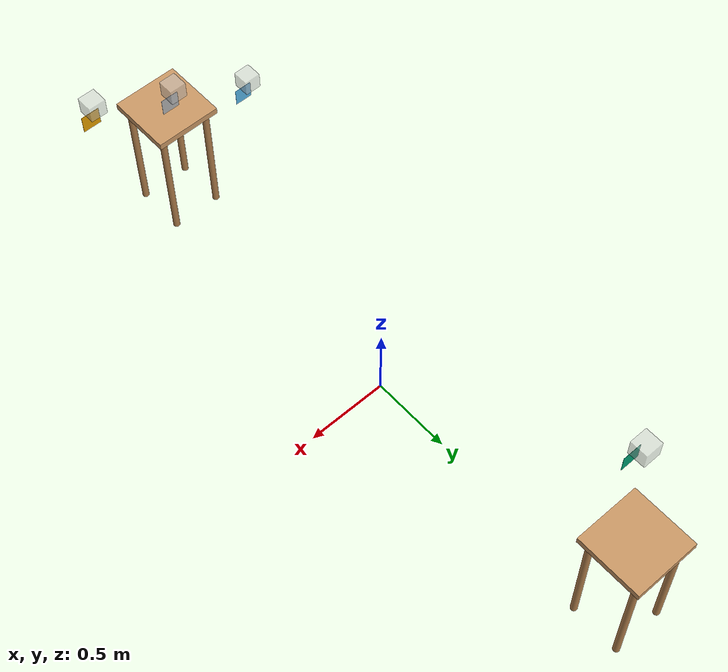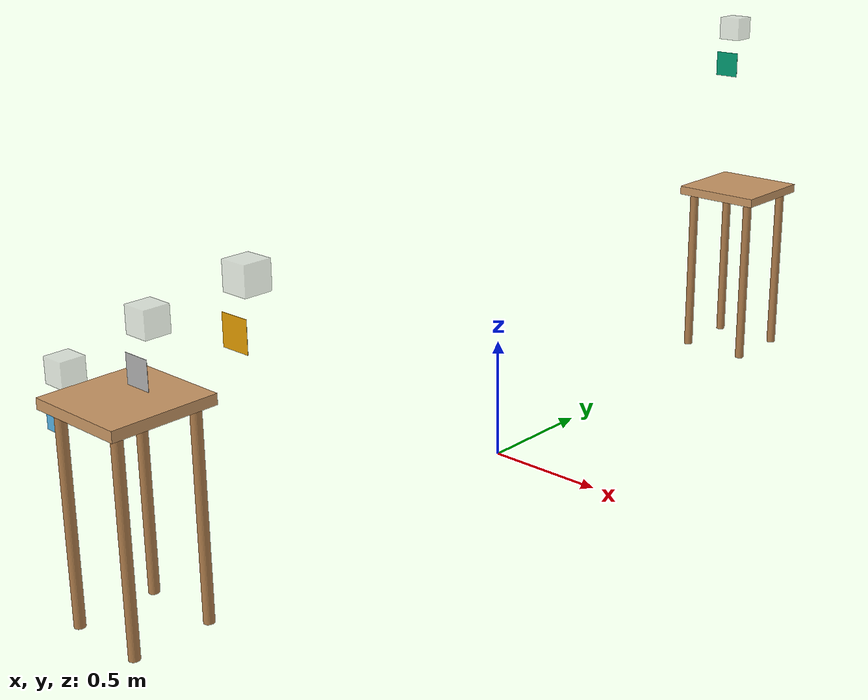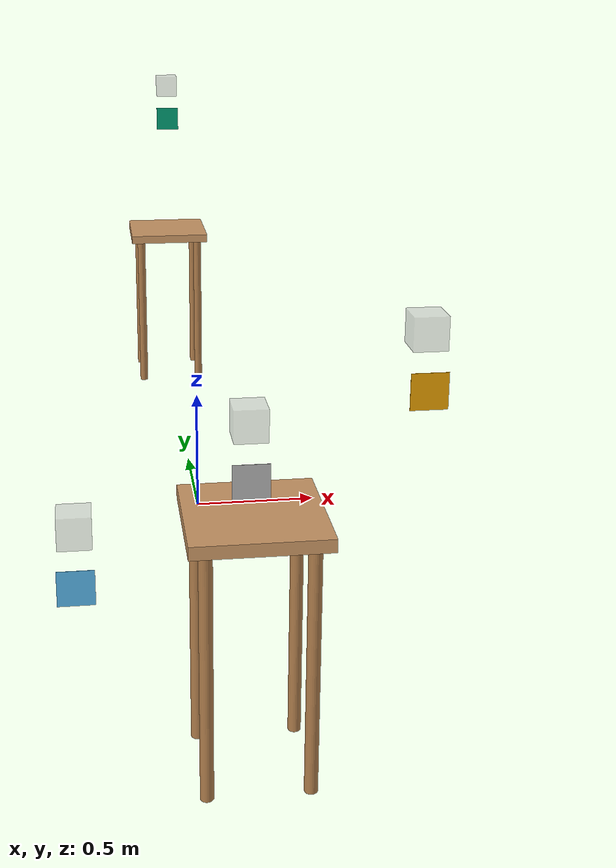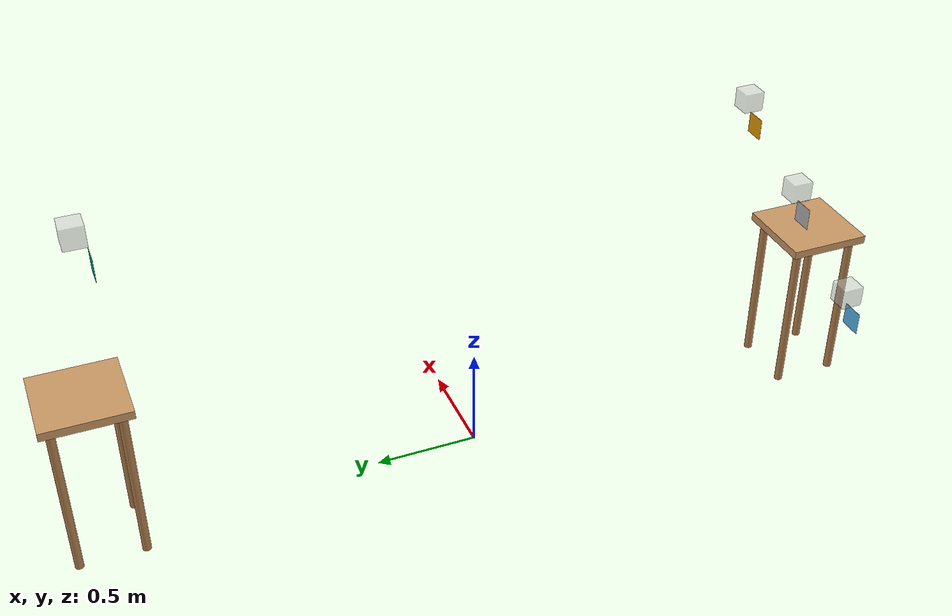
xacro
<?xml version="1.0"?>
<robot xmlns:xacro="http://ros.org/wiki/xacro" name="standalone_apriltag_cube">

  <!-- 定义参数 -->
  <xacro:property name="table_height" value="0.8" />  <!-- 桌子高度参数 -->
  <xacro:property name="table_thickness" value="0.04" />  <!-- 桌面厚度 -->
  <xacro:property name="leg_radius" value="0.02" />  <!-- 桌腿半径 -->

  <!-- 第一个桌子位置参数 -->
  <xacro:property name="table1_x" value="0.0" />
  <xacro:property name="table1_y" value="1.8" />
  <xacro:property name="table1_z" value="${table_height}" />

  <!-- 第二个桌子位置参数 -->
  <xacro:property name="table2_x" value="0.0" />
  <xacro:property name="table2_y" value="-1.8" />
  <xacro:property name="table2_z" value="${table_height}" />

  <!-- 立方体位置参数/参数相对于桌子来说 -->
  <xacro:property name="cube_x" value="0.0" />
  <xacro:property name="cube_y" value="0.0" />
  <xacro:property name="cube_z" value="${table_thickness/2 + 0.05}" />

  <!-- 引入apriltag -->
  <xacro:include filename="$(find kuavo_assets)/models/apriltag/urdf/apriltag.xacro"/>

  <!-- 添加一个世界链接作为根链接 -->
  <link name="world"/>

  <!-- 创建第一个桌子链接 -->
  <link name="table1_link">
    <visual>
      <geometry>
        <box size="0.4 0.4 ${table_thickness}"/>
      </geometry>
      <material name="wood">
        <color rgba="0.8 0.6 0.4 1.0"/>
      </material>
    </visual>
    <collision>
      <geometry>
        <box size="0.4 0.4 ${table_thickness}"/>
      </geometry>
    </collision>
    <inertial>
      <mass value="5.0"/>
      <inertia ixx="0.1" ixy="0" ixz="0" iyy="0.1" iyz="0" izz="0.1"/>
    </inertial>
  </link>

  <!-- 添加Gazebo物理属性 -->
  <gazebo reference="table1_link">
    <material>Gazebo/Wood</material>
    <mu1>0.5</mu1>
    <mu2>0.5</mu2>
    <kp>1000000.0</kp>
    <kd>100.0</kd>
    <minDepth>0.001</minDepth>
    <maxVel>1.0</maxVel>
    <maxContacts>20</maxContacts>
  </gazebo>

  <!-- 将世界链接与第一个桌子连接 -->
  <joint name="world_to_table1_joint" type="fixed">
    <parent link="world"/>
    <child link="table1_link"/>
    <origin xyz="${table1_x} ${table1_y} ${table1_z}" rpy="0 0 0"/>
  </joint>

  <!-- 创建第二个桌子链接 -->
  <link name="table2_link">
    <visual>
      <geometry>
        <box size="0.4 0.4 ${table_thickness}"/>
      </geometry>
      <material name="wood">
        <color rgba="0.8 0.6 0.4 1.0"/>
      </material>
    </visual>
    <collision>
      <geometry>
        <box size="0.4 0.4 ${table_thickness}"/>
      </geometry>
    </collision>
    <inertial>
      <mass value="5.0"/>
      <inertia ixx="0.1" ixy="0" ixz="0" iyy="0.1" iyz="0" izz="0.1"/>
    </inertial>
  </link>

  <!-- 添加Gazebo物理属性 -->
  <gazebo reference="table2_link">
    <material>Gazebo/Wood</material>
    <mu1>0.5</mu1>
    <mu2>0.5</mu2>
    <kp>1000000.0</kp>
    <kd>100.0</kd>
    <minDepth>0.001</minDepth>
    <maxVel>1.0</maxVel>
    <maxContacts>20</maxContacts>
  </gazebo>

  <!-- 将世界链接与第二个桌子连接 -->
  <joint name="world_to_table2_joint" type="fixed">
    <parent link="world"/>
    <child link="table2_link"/>
    <origin xyz="${table2_x} ${table2_y} ${table2_z}" rpy="0 0 0"/>
  </joint>

  <!-- 创建第一个桌子的四条桌腿 -->
  <xacro:macro name="table_leg" params="name x y">
    <link name="${name}">
      <visual>
        <geometry>
          <cylinder radius="${leg_radius}" length="${table_height}"/>
        </geometry>
        <material name="wood">
          <color rgba="0.7 0.5 0.3 1.0"/>
        </material>
      </visual>
      <collision>
        <geometry>
          <cylinder radius="${leg_radius}" length="${table_height}"/>
        </geometry>
      </collision>
      <inertial>
        <mass value="0.5"/>
        <inertia ixx="0.01" ixy="0" ixz="0" iyy="0.01" iyz="0" izz="0.001"/>
      </inertial>
    </link>

    <gazebo reference="${name}">
      <material>Gazebo/Wood</material>
      <mu1>0.5</mu1>
      <mu2>0.5</mu2>
    </gazebo>
  </xacro:macro>

  <!-- 创建第一个桌子的桌腿 -->
  <xacro:table_leg name="table1_leg1" x="0.15" y="0.15"/>
  <xacro:table_leg name="table1_leg2" x="-0.15" y="0.15"/>
  <xacro:table_leg name="table1_leg3" x="0.15" y="-0.15"/>
  <xacro:table_leg name="table1_leg4" x="-0.15" y="-0.15"/>

  <!-- 创建第二个桌子的桌腿 -->
  <xacro:table_leg name="table2_leg1" x="0.15" y="0.15"/>
  <xacro:table_leg name="table2_leg2" x="-0.15" y="0.15"/>
  <xacro:table_leg name="table2_leg3" x="0.15" y="-0.15"/>
  <xacro:table_leg name="table2_leg4" x="-0.15" y="-0.15"/>

  <!-- 连接第一个桌子的桌腿 -->
  <joint name="table1_to_leg1_joint" type="fixed">
    <parent link="table1_link"/>
    <child link="table1_leg1"/>
    <origin xyz="0.15 0.15 ${-table_height/2}" rpy="0 0 0"/>
  </joint>

  <joint name="table1_to_leg2_joint" type="fixed">
    <parent link="table1_link"/>
    <child link="table1_leg2"/>
    <origin xyz="-0.15 0.15 ${-table_height/2}" rpy="0 0 0"/>
  </joint>

  <joint name="table1_to_leg3_joint" type="fixed">
    <parent link="table1_link"/>
    <child link="table1_leg3"/>
    <origin xyz="0.15 -0.15 ${-table_height/2}" rpy="0 0 0"/>
  </joint>

  <joint name="table1_to_leg4_joint" type="fixed">
    <parent link="table1_link"/>
    <child link="table1_leg4"/>
    <origin xyz="-0.15 -0.15 ${-table_height/2}" rpy="0 0 0"/>
  </joint>

  <!-- 连接第二个桌子的桌腿 -->
  <joint name="table2_to_leg1_joint" type="fixed">
    <parent link="table2_link"/>
    <child link="table2_leg1"/>
    <origin xyz="0.15 0.15 ${-table_height/2}" rpy="0 0 0"/>
  </joint>

  <joint name="table2_to_leg2_joint" type="fixed">
    <parent link="table2_link"/>
    <child link="table2_leg2"/>
    <origin xyz="-0.15 0.15 ${-table_height/2}" rpy="0 0 0"/>
  </joint>

  <joint name="table2_to_leg3_joint" type="fixed">
    <parent link="table2_link"/>
    <child link="table2_leg3"/>
    <origin xyz="0.15 -0.15 ${-table_height/2}" rpy="0 0 0"/>
  </joint>

  <joint name="table2_to_leg4_joint" type="fixed">
    <parent link="table2_link"/>
    <child link="table2_leg4"/>
    <origin xyz="-0.15 -0.15 ${-table_height/2}" rpy="0 0 0"/>
  </joint>

  <!-- 创建三个基础链接作为立方体的中心 -->
  <link name="apriltag_box_base">
    <visual>
      <geometry>
        <box size="0.1 0.1 0.1"/>
      </geometry>
      <material>
        <color rgba="0.8 0.8 0.8 0.5"/>
      </material>
    </visual>
    <collision>
      <geometry>
        <box size="0.1 0.1 0.1"/>
      </geometry>
    </collision>
    <inertial>
      <mass value="0.1"/>
      <inertia ixx="0.0001" ixy="0" ixz="0" iyy="0.0001" iyz="0" izz="0.0001"/>
    </inertial>
  </link>
  <link name="apriltag_box_tag2_base">
    <visual>
      <geometry>
        <box size="0.1 0.1 0.1"/>
      </geometry>
      <material>
        <color rgba="0.8 0.8 0.8 0.5"/>
      </material>
    </visual>
    <collision>
      <geometry>
        <box size="0.1 0.1 0.1"/>
      </geometry>
    </collision>
    <inertial>
      <mass value="0.1"/>
      <inertia ixx="0.0001" ixy="0" ixz="0" iyy="0.0001" iyz="0" izz="0.0001"/>
    </inertial>
  </link>
  <link name="apriltag_box_tag3_base">
    <visual>
      <geometry>
        <box size="0.1 0.1 0.1"/>
      </geometry>
      <material>
        <color rgba="0.8 0.8 0.8 0.5"/>
      </material>
    </visual>
    <collision>
      <geometry>
        <box size="0.1 0.1 0.1"/>
      </geometry>
    </collision>
    <inertial>
      <mass value="0.1"/>
      <inertia ixx="0.0001" ixy="0" ixz="0" iyy="0.0001" iyz="0" izz="0.0001"/>
    </inertial>
  </link>
  <link name="apriltag_shelf_base">
    <visual>
      <geometry>
        <box size="0.1 0.1 0.1"/>
      </geometry>
      <material>
        <color rgba="0.8 0.8 0.8 0.5"/>
      </material>
    </visual>
    <collision>
      <geometry>
        <box size="0.1 0.1 0.1"/>
      </geometry>
    </collision>
    <inertial>
      <mass value="0.1"/>
      <inertia ixx="0.0001" ixy="0" ixz="0" iyy="0.0001" iyz="0" izz="0.0001"/>
    </inertial>
  </link>

  <!-- 将立方体连接到世界坐标系 -->
  <joint name="world_to_box_tag_joint" type="fixed">
    <parent link="world"/>
    <child link="apriltag_box_base"/>
    <origin xyz="0.0 -1.7 1.05" rpy="0 0 0"/>
  </joint>
  <joint name="world_to_box_tag2_joint" type="fixed">
    <parent link="world"/>
    <child link="apriltag_box_tag2_base"/>
    <origin xyz="0.5 -1.7 1.3" rpy="0 0 0"/>
  </joint>
  <joint name="world_to_box_tag3_joint" type="fixed">
    <parent link="world"/>
    <child link="apriltag_box_tag3_base"/>
    <origin xyz="-0.5 -1.7 0.75" rpy="0 0 0"/>
  </joint>
  <joint name="world_to_table_joint" type="fixed">
    <parent link="world"/>
    <child link="apriltag_shelf_base"/>
    <origin xyz="0.0 1.7 1.6" rpy="0 0 4.712389"/> <!-- 绕z轴旋转270度 (4.712389弧度 = 270度) -->
  </joint>

  <xacro:apriltag_marker parent_link="apriltag_box_base" id="1">
    <origin xyz="0 -0.055 -0.165" rpy="1.5708 1.5708 0"/>
  </xacro:apriltag_marker>

  <xacro:apriltag_marker parent_link="apriltag_box_tag2_base" id="2">
    <origin xyz="0 -0.055 -0.165" rpy="1.5708 1.5708 0"/>
  </xacro:apriltag_marker>

  <xacro:apriltag_marker parent_link="apriltag_box_tag3_base" id="3">
    <origin xyz="0 -0.055 -0.165" rpy="1.5708 1.5708 0"/>
  </xacro:apriltag_marker>

  <xacro:apriltag_marker parent_link="apriltag_shelf_base" id="0">
    <origin xyz="0.055 0 -0.165" rpy="0 -1.5708 3.14159"/>
  </xacro:apriltag_marker>
</robot>

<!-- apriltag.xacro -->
<robot xmlns:xacro="http://ros.org/wiki/xacro" name="apriltag_marker">

  <xacro:macro name="apriltag_marker" params="parent_link *origin id enable_collision:=false">
    <!-- 定义二维码的Link -->
    <link name="apriltag_marker_${id}">
      <visual>
        <origin xyz="0 0 0" rpy="0 0 0"/>
        <geometry>
          <box size="0.11 0.11 0.001"/>
        </geometry>
      </visual>
      <xacro:if value="${enable_collision}">
        <collision>
          <geometry>
            <box size="0.11 0.11 0.001"/>
          </geometry>
        </collision>
      </xacro:if>
    </link>

    <joint name="apriltag_joint_${id}" type="fixed">
      <xacro:insert_block name="origin" />
      <parent link="${parent_link}"/>
      <child link="apriltag_marker_${id}"/>
    </joint>

    <gazebo reference="apriltag_marker_${id}">
      <visual>
        <material>
          <script>
            <uri>file://$(find kuavo_assets)/models/apriltag/materials/apriltag_${id}.material</uri>
            <name>AprilTag/Marker${id}</name>
          </script>
          <shader type="pixel">
            <normal_map>__default__</normal_map>
          </shader>
          <double_sided>false</double_sided>
        </material>
      </visual>
    </gazebo>
  </xacro:macro>
</robot>
